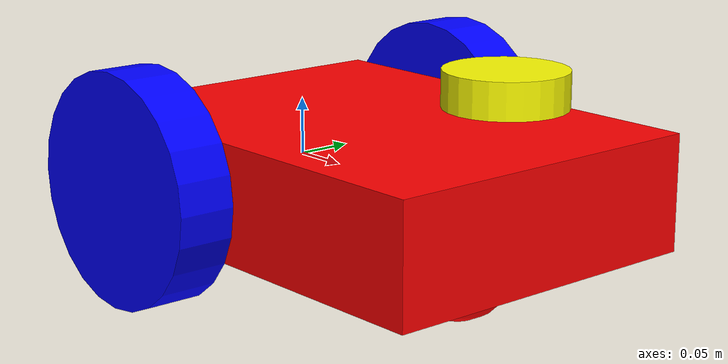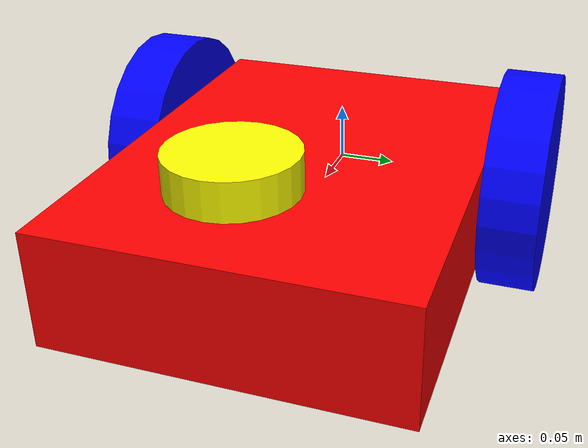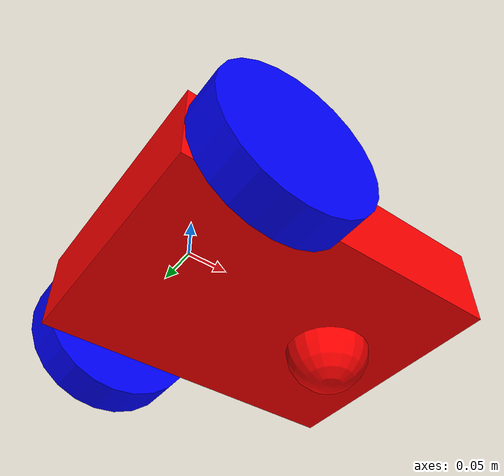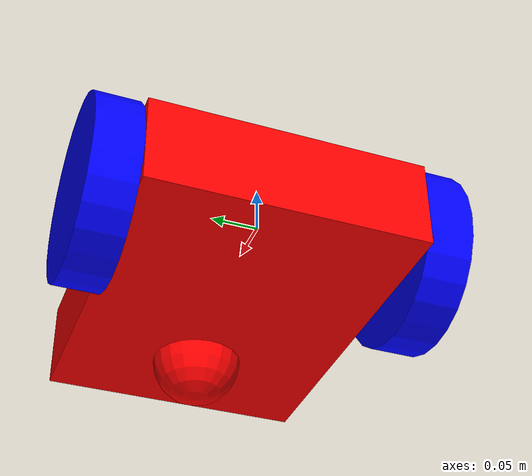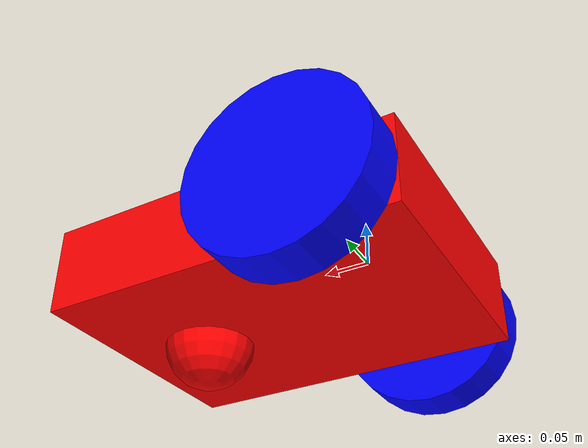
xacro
<?xml version="1.0"?>
<robot name="my_bot" xmlns:xacro="http://www.ros.org/wiki/xacro">
    <link name="base_link">
    </link>

    <xacro:include filename="inertia.urdf.xacro"/>
    xacro:<xacro:include filename="gazebo.xacro"/>
    <joint name="chassis_joint" type="fixed">
        <origin xyz="0.1 0.0 0.0" rpy="0.0 0.0 0.0"/>
        <parent link="base_link"/>
        <child link="chassis"/>
    </joint>

    <link name="chassis">
        <xacro:inertial_box mass="0.5" x="0.3" y="0.3" z="0.1">
            <origin xyz="0.0 0 0.0" rpy="0 0 0"/>
        </xacro:inertial_box>
        <visual name="">
            <origin xyz="0.0 0.0 0.0" rpy="0.0 0.0 0.0"/>
            <geometry>
                <box size="0.4 0.3 0.1"/>
            </geometry>
            <material name="">
                <color rgba="1.0 0.0 0.0 1.0"/>
            </material>
        </visual>
        <collision>
            <origin xyz="0.0 0.0 0.0" rpy="0.0 0.0 0.0"/>
            <geometry>
                <box size="0.4 0.3 0.1"/>
            </geometry>
        </collision>
    </link>

    <joint name="left_wheel_joint" type="continuous">
        <origin xyz="-0.1 0.175 0.0" rpy="-1.57 0.0 0.0"/>
        <parent link="chassis"/>
        <child link="left_wheel"/>
        <axis xyz="0.0 0.0 1.0"/>
    </joint>

    <link name="left_wheel">
        <xacro:inertial_cylinder mass="0.1" length="0.05" radius="0.1">
            <origin xyz="0.0 0 0.0" rpy="0 0 0"/>
        </xacro:inertial_cylinder>
        <visual name="">
            <origin xyz="0.0 0.0 0.0" rpy="0.0 0.0 0.0"/>
            <geometry>
                <cylinder radius="0.1" length="0.05"/>
            </geometry>
            <material name="">
                <color rgba="0.0 0.0 1.0 1.0"/>
                <texture filename=""/>
            </material>
        </visual>
        <collision>
            <origin xyz="0.0 0.0 0.0" rpy="0.0 0.0 0.0"/>
            <geometry>
                <cylinder radius="0.1" length="0.05"/>
            </geometry>
        </collision>
    </link>

    <joint name="right_wheel_joint" type="continuous">
        <origin xyz="-0.1 -0.175 0.0" rpy="1.57 0.0 0.0"/>
        <parent link="chassis"/>
        <child link="right_wheel"/>
        <axis xyz="0.0 0.0 -1.0"/>
    </joint>

    <link name="right_wheel">
        <xacro:inertial_cylinder mass="0.1" length="0.05" radius="0.1">
            <origin xyz="0.0 0 0.0" rpy="0 0 0"/>
        </xacro:inertial_cylinder>
        <visual name="">
            <origin xyz="0.0 0.0 0.0" rpy="0.0 0.0 0.0"/>
            <geometry>
                <cylinder radius="0.1" length="0.05"/>
            </geometry>
            <material name="">
                <color rgba="0.0 0.0 1.0 1.0"/>
                <texture filename=""/>
            </material>
        </visual>
        <collision>
            <origin xyz="0.0 0.0 0.0" rpy="0.0 0.0 0.0"/>
            <geometry>
                <cylinder radius="0.1" length="0.05"/>
            </geometry>
        </collision>
    </link>

    <joint name="caster_joint" type="fixed">
        <origin xyz="0.1 0.0 -0.05" rpy="0.0 0.0 0.0"/>
        <parent link="chassis"/>
        <child link="caster"/>
    </joint>

    <link name="caster">
        <xacro:inertial_sphere mass="0.1" radius="0.05">
            <origin xyz="0.0 0 0.0" rpy="0 0 0"/>
        </xacro:inertial_sphere>
        <visual name="">
            <origin xyz="0.0 0.0 0.0" rpy="0.0 0.0 0.0"/>
            <geometry>
                 <sphere radius="0.05"/>
            </geometry>
            <material name="">
                <color rgba="1.0 0.0 0.0 1.0"/>
                <texture filename=""/>
            </material>
        </visual>
        <collision>
            <origin xyz="0.0 0.0 0.0" rpy="0.0 0.0 0.0"/>
            <geometry>
                 <sphere radius="0.05"/>
            </geometry>
        </collision>
    </link>

    <joint name="laser_joint" type="fixed">
        <origin xyz="0.15 0.0 0.1" rpy="0.0 0.0 0.0"/>
        <parent link="chassis"/>
        <child link="laser"/>
        <axis xyz="0.0 0.0 0.0"/>
        <limit lower="0.0" upper="0.0" effort="0.0" velocity="0.0"/>
    </joint>
    <link name="laser">
        <xacro:inertial_cylinder mass="0.1" length="0.03" radius="0.05">
            <origin xyz="0.0 0 0.0" rpy="0 0 0"/>
        </xacro:inertial_cylinder>
        <visual name="">
            <origin xyz="0.0 0.0 0.0" rpy="0.0 0.0 0.0"/>
            <geometry>
                <cylinder radius="0.05" length="0.03"/>
            </geometry>
                <color rgba="1.0 0.0 0.0 0.0"/>
            <material name="">
                <color rgba="1.0 1.0 0.0 1.0"/>
                <texture filename=""/>
            </material>
        </visual>
        <collision>
            <origin xyz="0.0 0.0 0.0" rpy="0.0 0.0 0.0"/>
            <geometry>
                <box size="0.1 0.1 0.03"/>
            </geometry>
        </collision>
    </link>

</robot>
